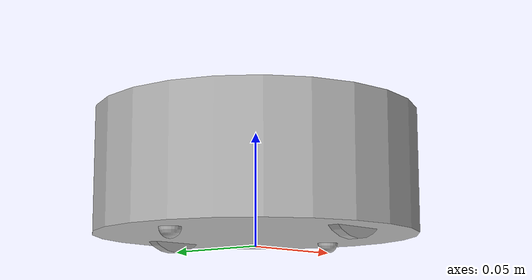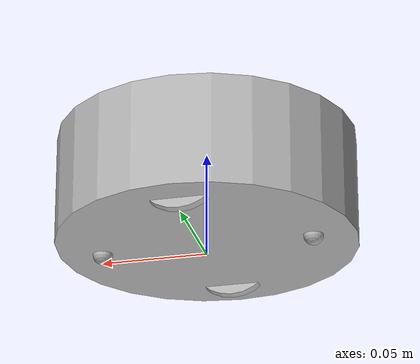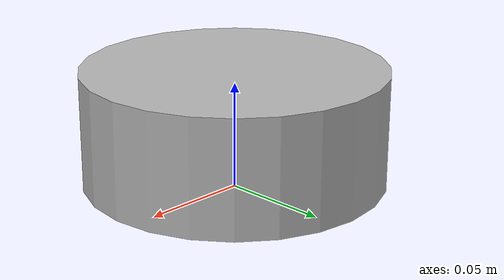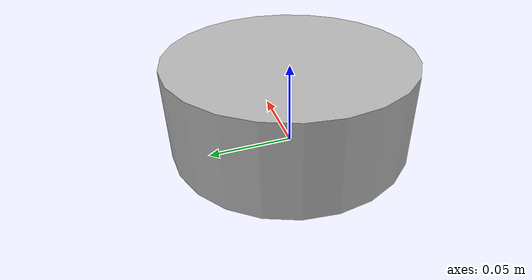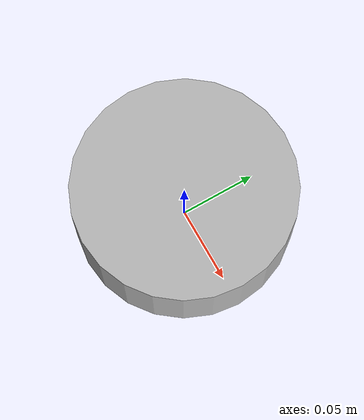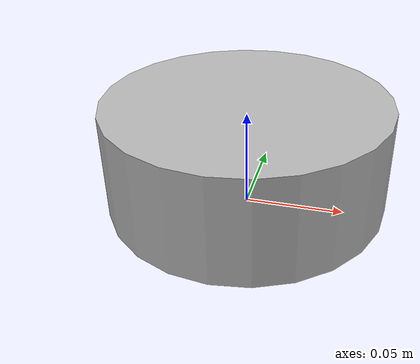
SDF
<?xml version='1.0'?>
<sdf version='1.6'>
  <model name="kh4_robot">
  <static>false</static>

    <!-- Robot Chassis -->

    <link name='chassis'>
      <pose>0 0 .0312 0 0 0</pose>
      <inertial>
      	<mass>0.5</mass>
    		<inertia>
      		<ixx>0.000834</ixx>
      		<ixy>0</ixy>
      		<ixz>0</ixz>
      		<iyy>0.000834</iyy>
      		<iyz>0</iyz>
      		<izz>0.001403</izz>
    		</inertia>
  		</inertial>

      <!-- Robot Cylindrical Frame -->

      <collision name='collision'>
        <geometry>
          <cylinder>
            <radius>.0704</radius>
            <length>.053</length>
          </cylinder>
        </geometry>
      </collision>

      <visual name='visual'>
        <geometry>
          <cylinder>
            <radius>.0704</radius>
            <length>.053</length>
          </cylinder>
        </geometry>
      </visual>

      <!-- Front Caster -->

      <collision name='front_caster_collision'>
      	<pose>0.05 0 -0.0265 0 0 0</pose>
        <geometry>
          <sphere>
            <radius>.0047</radius>
          </sphere>
        </geometry>

        <surface>
        	<friction>
        		<ode>
        			<mu>0</mu>
        			<mu2>0</mu2>
        			<slip1>1.0</slip1>
        			<slip2>1.0</slip2>
        		</ode>
        	</friction>
        </surface>
      </collision>

      <visual name="front_caster_visual">
      	<pose>0.05 0 -0.0265 0 0 0</pose>
        <geometry>
          <sphere>
            <radius>.0047</radius>
          </sphere>
        </geometry>
      </visual>

      <!-- Back Caster -->

      <collision name='back_caster_collision'>
      	<pose>-0.05 0 -0.0265 0 0 0</pose>
        <geometry>
          <sphere>
            <radius>.0047</radius>
          </sphere>
        </geometry>

        <surface>
        	<friction>
        		<ode>
        			<mu>0</mu>
        			<mu2>0</mu2>
        			<slip1>1.0</slip1>
        			<slip2>1.0</slip2>
        		</ode>
        	</friction>
        </surface>
      </collision>

      <visual name="back_caster_visual">
      	<pose>-0.05 0 -0.0265 0 0 0</pose>
        <geometry>
          <sphere>
            <radius>.0047</radius>
          </sphere>
        </geometry>
      </visual>

      <!-- IR Sensors -->

      <sensor type="ray" name="ray_sensor">
       <visualize>1</visualize>
       <pose>0 0 -0.01 0 0 0</pose>
      	<ray>
      		<scan>
      			<horizontal>
       				<samples>8</samples>
       				<resolution>1</resolution>
       				<min_angle>0</min_angle>
       				<max_angle>5.49778</max_angle>
       			</horizontal>
       		</scan>
       		<range>
       			<min>0.0705</min> <!-- Need to add the Kh4 radius -->
       			<max>0.3204</max> <!-- Need to add the Kh4 radius -->
       		</range>
       	</ray>
      </sensor>

    <!-- Sonar Sensors -->

      <sensor type="sonar" name="sonar_sensor_N">
       <visualize>1</visualize>
       <pose>0 0 0 0 4.71239 0</pose>
      	<sonar>
      		<min>0.3204</min>
      		<max>2.0704</max>
      		<radius>0.01</radius>
       	</sonar>
      </sensor>

      <sensor type="sonar" name="sonar_sensor_W">
       <visualize>1</visualize>
       <pose>0 0 0 0 4.71239 1.57079</pose>
      	<sonar>
      		<min>0.3204</min>
      		<max>2.0704</max>
      		<radius>0.01</radius>
       	</sonar>
      </sensor>

      <sensor type="sonar" name="sonar_sensor_NW">
       <visualize>1</visualize>
       <pose>0 0 0 0 4.71239 0.78539</pose>
      	<sonar>
      		<min>0.3204</min>
      		<max>2.0704</max>
      		<radius>0.01</radius>
       	</sonar>
      </sensor>

      <sensor type="sonar" name="sonar_sensor_E">
       <visualize>1</visualize>
       <pose>0 0 0 0 4.71239 4.71239</pose>
      	<sonar>
      		<min>0.3204</min>
      		<max>2.0704</max>
      		<radius>0.01</radius>
       	</sonar>
      </sensor>

      <sensor type="sonar" name="sonar_sensor_NE">
       <visualize>1</visualize>
       <pose>0 0 0 0 4.71239 5.49779</pose>
      	<sonar>
      		<min>0.3204</min>
      		<max>2.0704</max>
      		<radius>0.01</radius>
       	</sonar>
      </sensor>

    <!-- IMU -->

      <sensor type="IMU" name="inertia_sensor">
       <visualize>0</visualize>
       <pose>0 0 0 0 0 0</pose>
      	<imu>
      		<orientation_reference_frame>
      			<localization>GRAV_UP</localization>
      		</orientation_reference_frame>
       	</imu>
      </sensor>

    </link>

    <!-- Left Wheel -->

    <link name="left_wheel">
    	<pose>0 0.0527 0.021 0 1.5707 1.5707</pose> <!-- Wheels are at a different angle: z_wheel = y_world -->
    	<inertial>
      	<mass>0.033</mass>
    		<inertia>
      		<ixx>0.000004</ixx>
      		<ixy>0</ixy>
      		<ixz>0</ixz>
      		<iyy>0.000004</iyy>
      		<iyz>0</iyz>
      		<izz>0.000007</izz>
    		</inertia>
  		</inertial>

    	<collision name="collision">
    		<geometry>
    			<cylinder>
    				<radius>0.021</radius>
    				<length>0.005</length>
    			</cylinder>
    		</geometry>
    	</collision>

    	<visual name="visual">
    		<geometry>
    			<cylinder>
    				<radius>0.021</radius>
    				<length>0.005</length>
    			</cylinder>
    		</geometry>
    	</visual>
    </link>

    <!-- Right Wheel -->

    <link name="right_wheel">
    	<pose>0 -0.0527 0.021 0 1.5707 1.5707</pose> <!-- Wheels are at a different angle: z_wheel = y_world -->
    	<inertial>
      	<mass>0.033</mass>
    		<inertia>
      		<ixx>0.000004</ixx>
      		<ixy>0</ixy>
      		<ixz>0</ixz>
      		<iyy>0.000004</iyy>
      		<iyz>0</iyz>
      		<izz>0.000007</izz>
    		</inertia>
  		</inertial>

    	<collision name="collision">
    		<geometry>
    			<cylinder>
    				<radius>0.021</radius>
    				<length>0.005</length>
    			</cylinder>
    		</geometry>
    	</collision>

    	<visual name="visual">
    		<geometry>
    			<cylinder>
    				<radius>0.021</radius>
    				<length>0.005</length>
    			</cylinder>
    		</geometry>
    	</visual>
    </link>

    <!-- Left Wheel Hinge -->

    <joint type="revolute" name="left_wheel_hinge">
    	<pose>0 0 0 0 0 0</pose>  <!-- Wheels are at a different angle: z_wheel = y_world -->
    	<child>left_wheel</child>
    	<parent>chassis</parent>
    	<axis>
    		<xyz>0 0 1</xyz>
    	</axis>
    </joint>

    <!-- Rigth Wheel Hinge -->

    <joint type="revolute" name="right_wheel_hinge">
    	<pose>0 0 0 0 0 0</pose> <!-- Wheels are at a different angle: z_wheel = y_world -->
    	<child>right_wheel</child>
    	<parent>chassis</parent>
    	<axis>
    		<xyz>0 0 1</xyz>
    	</axis>
    </joint>

	</model>
</sdf>
